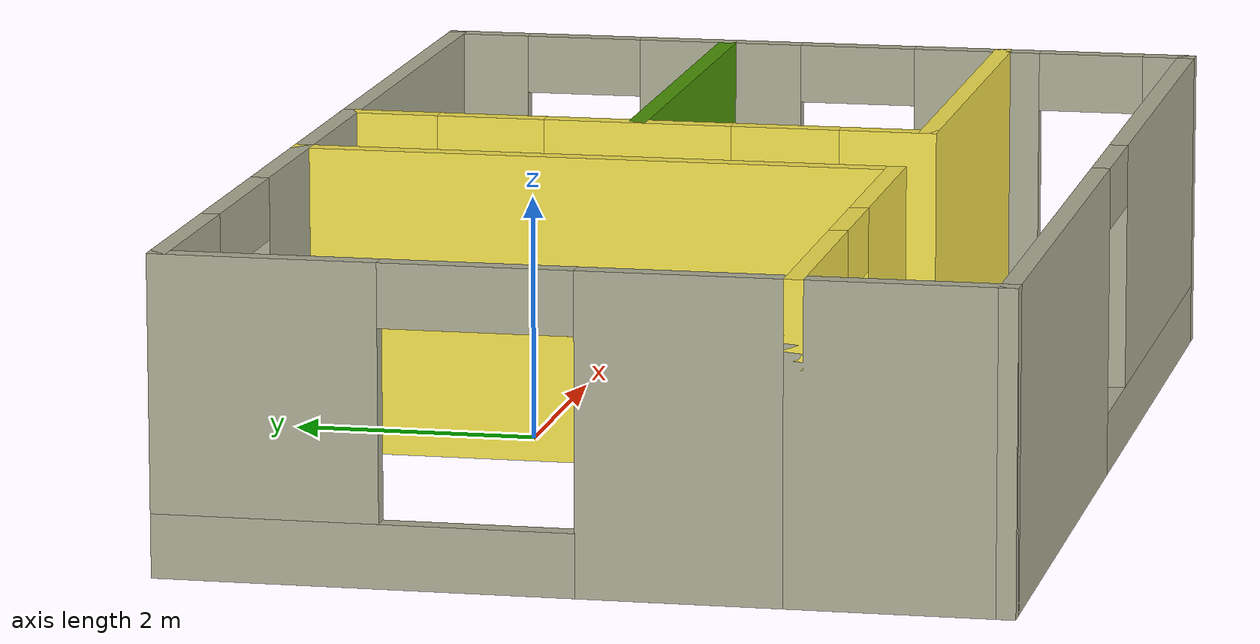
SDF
<?xml version='1.0'?>
<sdf version='1.6'>
  <model name='building'>
    <pose frame=''>-0.165 -1.485 0 0 -0 0</pose>
    <link name='Wall_0'>
      <pose frame=''>0 -3.225 0 0 -0 0</pose>
      <visual name='Wall_0_Visual_0'>
        <pose frame=''>-2.62728 0 1.25 0 -0 0</pose>
        <geometry>
          <box>
            <size>4.74545 0.15 2.5</size>
          </box>
        </geometry>
        <material>
          <script>
            <uri>file://media/materials/scripts/gazebo.material</uri>
            <name>Gazebo/Residential</name>
          </script>
          <ambient>1 1 1 1</ambient>
        </material>
        <meta>
          <layer>0</layer>
        </meta>
      </visual>
      <collision name='Wall_0_Collision_0'>
        <geometry>
          <box>
            <size>4.74545 0.15 2.5</size>
          </box>
        </geometry>
        <pose frame=''>-2.62728 0 1.25 0 -0 0</pose>
      </collision>
      <visual name='Wall_0_Visual_1'>
        <pose frame=''>2.37272 0 0.25 0 -0 0</pose>
        <geometry>
          <box>
            <size>5.25455 0.15 0.5</size>
          </box>
        </geometry>
        <material>
          <script>
            <uri>file://media/materials/scripts/gazebo.material</uri>
            <name>Gazebo/Residential</name>
          </script>
          <ambient>1 1 1 1</ambient>
        </material>
        <meta>
          <layer>0</layer>
        </meta>
      </visual>
      <collision name='Wall_0_Collision_1'>
        <geometry>
          <box>
            <size>5.25455 0.15 0.5</size>
          </box>
        </geometry>
        <pose frame=''>2.37272 0 0.25 0 -0 0</pose>
      </collision>
      <visual name='Wall_0_Visual_2'>
        <pose frame=''>2.87272 0 1.5 0 -0 0</pose>
        <geometry>
          <box>
            <size>4.25455 0.15 2</size>
          </box>
        </geometry>
        <material>
          <script>
            <uri>file://media/materials/scripts/gazebo.material</uri>
            <name>Gazebo/Residential</name>
          </script>
          <ambient>1 1 1 1</ambient>
        </material>
        <meta>
          <layer>0</layer>
        </meta>
      </visual>
      <collision name='Wall_0_Collision_2'>
        <geometry>
          <box>
            <size>4.25455 0.15 2</size>
          </box>
        </geometry>
        <pose frame=''>2.87272 0 1.5 0 -0 0</pose>
      </collision>
      <visual name='Wall_0_Visual_3'>
        <pose frame=''>0.245451 0 2.25 0 -0 0</pose>
        <geometry>
          <box>
            <size>1 0.15 0.5</size>
          </box>
        </geometry>
        <material>
          <script>
            <uri>file://media/materials/scripts/gazebo.material</uri>
            <name>Gazebo/Residential</name>
          </script>
          <ambient>1 1 1 1</ambient>
        </material>
        <meta>
          <layer>0</layer>
        </meta>
      </visual>
      <collision name='Wall_0_Collision_3'>
        <geometry>
          <box>
            <size>1 0.15 0.5</size>
          </box>
        </geometry>
        <pose frame=''>0.245451 0 2.25 0 -0 0</pose>
      </collision>
    </link>
    <link name='Wall_1'>
      <pose frame=''>4.925 -2.425 0 0 -0 1.5708</pose>
      <visual name='Wall_1_Visual_0'>
        <pose frame=''>-0.651737 0 1.25 0 -0 0</pose>
        <geometry>
          <box>
            <size>0.446526 0.15 2.5</size>
          </box>
        </geometry>
        <material>
          <script>
            <uri>file://media/materials/scripts/gazebo.material</uri>
            <name>Gazebo/Residential</name>
          </script>
          <ambient>1 1 1 1</ambient>
        </material>
        <meta>
          <layer>0</layer>
        </meta>
      </visual>
      <collision name='Wall_1_Collision_0'>
        <geometry>
          <box>
            <size>0.446526 0.15 2.5</size>
          </box>
        </geometry>
        <pose frame=''>-0.651737 0 1.25 0 -0 0</pose>
      </collision>
      <visual name='Wall_1_Visual_1'>
        <pose frame=''>0.673263 0 1.25 0 -0 0</pose>
        <geometry>
          <box>
            <size>0.403474 0.15 2.5</size>
          </box>
        </geometry>
        <material>
          <script>
            <uri>file://media/materials/scripts/gazebo.material</uri>
            <name>Gazebo/Residential</name>
          </script>
          <ambient>1 1 1 1</ambient>
        </material>
        <meta>
          <layer>0</layer>
        </meta>
      </visual>
      <collision name='Wall_1_Collision_1'>
        <geometry>
          <box>
            <size>0.403474 0.15 2.5</size>
          </box>
        </geometry>
        <pose frame=''>0.673263 0 1.25 0 -0 0</pose>
      </collision>
      <visual name='Wall_1_Visual_2'>
        <pose frame=''>0.021526 0 2.25 0 -0 0</pose>
        <geometry>
          <box>
            <size>0.9 0.15 0.5</size>
          </box>
        </geometry>
        <material>
          <script>
            <uri>file://media/materials/scripts/gazebo.material</uri>
            <name>Gazebo/Residential</name>
          </script>
          <ambient>1 1 1 1</ambient>
        </material>
        <meta>
          <layer>0</layer>
        </meta>
      </visual>
      <collision name='Wall_1_Collision_2'>
        <geometry>
          <box>
            <size>0.9 0.15 0.5</size>
          </box>
        </geometry>
        <pose frame=''>0.021526 0 2.25 0 -0 0</pose>
      </collision>
    </link>
    <link name='Wall_10'>
      <collision name='Wall_10_Collision'>
        <geometry>
          <box>
            <size>1.75 0.15 2.5</size>
          </box>
        </geometry>
        <pose frame=''>0 0 1.25 0 -0 0</pose>
      </collision>
      <visual name='Wall_10_Visual'>
        <pose frame=''>0 0 1.25 0 -0 0</pose>
        <geometry>
          <box>
            <size>1.75 0.15 2.5</size>
          </box>
        </geometry>
        <material>
          <script>
            <uri>file://media/materials/scripts/gazebo.material</uri>
            <name>Gazebo/Residential</name>
          </script>
          <ambient>1 1 1 1</ambient>
        </material>
        <meta>
          <layer>0</layer>
        </meta>
      </visual>
      <pose frame=''>0.225 3.225 0 0 -0 0</pose>
    </link>
    <link name='Wall_11'>
      <pose frame=''>1.025 0.8 0 0 0 -1.5708</pose>
      <visual name='Wall_11_Visual_0'>
        <pose frame=''>-2.08576 0 1.25 0 -0 0</pose>
        <geometry>
          <box>
            <size>0.828489 0.15 2.5</size>
          </box>
        </geometry>
        <material>
          <script>
            <uri>file://media/materials/scripts/gazebo.material</uri>
            <name>Gazebo/Grey</name>
          </script>
          <ambient>0.988235 0.913725 0.309804 1</ambient>
        </material>
        <meta>
          <layer>0</layer>
        </meta>
      </visual>
      <collision name='Wall_11_Collision_0'>
        <geometry>
          <box>
            <size>0.828489 0.15 2.5</size>
          </box>
        </geometry>
        <pose frame=''>-2.08576 0 1.25 0 -0 0</pose>
      </collision>
      <visual name='Wall_11_Visual_1'>
        <pose frame=''>0.011538 0 1.25 0 -0 0</pose>
        <geometry>
          <box>
            <size>1.5661 0.15 2.5</size>
          </box>
        </geometry>
        <material>
          <script>
            <uri>file://media/materials/scripts/gazebo.material</uri>
            <name>Gazebo/Grey</name>
          </script>
          <ambient>0.988235 0.913725 0.309804 1</ambient>
        </material>
        <meta>
          <layer>0</layer>
        </meta>
      </visual>
      <collision name='Wall_11_Collision_1'>
        <geometry>
          <box>
            <size>1.5661 0.15 2.5</size>
          </box>
        </geometry>
        <pose frame=''>0.011538 0 1.25 0 -0 0</pose>
      </collision>
      <visual name='Wall_11_Visual_2'>
        <pose frame=''>2.09729 0 1.25 0 -0 0</pose>
        <geometry>
          <box>
            <size>0.805412 0.15 2.5</size>
          </box>
        </geometry>
        <material>
          <script>
            <uri>file://media/materials/scripts/gazebo.material</uri>
            <name>Gazebo/Grey</name>
          </script>
          <ambient>0.988235 0.913725 0.309804 1</ambient>
        </material>
        <meta>
          <layer>0</layer>
        </meta>
      </visual>
      <collision name='Wall_11_Collision_2'>
        <geometry>
          <box>
            <size>0.805412 0.15 2.5</size>
          </box>
        </geometry>
        <pose frame=''>2.09729 0 1.25 0 -0 0</pose>
      </collision>
      <visual name='Wall_11_Visual_3'>
        <pose frame=''>-1.22151 0 2.25 0 -0 0</pose>
        <geometry>
          <box>
            <size>0.9 0.15 0.5</size>
          </box>
        </geometry>
        <material>
          <script>
            <uri>file://media/materials/scripts/gazebo.material</uri>
            <name>Gazebo/Grey</name>
          </script>
          <ambient>0.988235 0.913725 0.309804 1</ambient>
        </material>
        <meta>
          <layer>0</layer>
        </meta>
      </visual>
      <collision name='Wall_11_Collision_3'>
        <geometry>
          <box>
            <size>0.9 0.15 0.5</size>
          </box>
        </geometry>
        <pose frame=''>-1.22151 0 2.25 0 -0 0</pose>
      </collision>
      <visual name='Wall_11_Visual_4'>
        <pose frame=''>1.24459 0 2.25 0 -0 0</pose>
        <geometry>
          <box>
            <size>0.9 0.15 0.5</size>
          </box>
        </geometry>
        <material>
          <script>
            <uri>file://media/materials/scripts/gazebo.material</uri>
            <name>Gazebo/Grey</name>
          </script>
          <ambient>0.988235 0.913725 0.309804 1</ambient>
        </material>
        <meta>
          <layer>0</layer>
        </meta>
      </visual>
      <collision name='Wall_11_Collision_4'>
        <geometry>
          <box>
            <size>0.9 0.15 0.5</size>
          </box>
        </geometry>
        <pose frame=''>1.24459 0 2.25 0 -0 0</pose>
      </collision>
    </link>
    <link name='Wall_15'>
      <pose frame=''>4.925 0.8 0 0 -0 1.5708</pose>
      <visual name='Wall_15_Visual_0'>
        <pose frame=''>-2.07857 0 1.25 0 -0 0</pose>
        <geometry>
          <box>
            <size>0.842863 0.15 2.5</size>
          </box>
        </geometry>
        <material>
          <script>
            <uri>file://media/materials/scripts/gazebo.material</uri>
            <name>Gazebo/Residential</name>
          </script>
          <ambient>1 1 1 1</ambient>
        </material>
        <meta>
          <layer>0</layer>
        </meta>
      </visual>
      <collision name='Wall_15_Collision_0'>
        <geometry>
          <box>
            <size>0.842863 0.15 2.5</size>
          </box>
        </geometry>
        <pose frame=''>-2.07857 0 1.25 0 -0 0</pose>
      </collision>
      <visual name='Wall_15_Visual_1'>
        <pose frame=''>0.421431 0 0.25 0 -0 0</pose>
        <geometry>
          <box>
            <size>4.15714 0.15 0.5</size>
          </box>
        </geometry>
        <material>
          <script>
            <uri>file://media/materials/scripts/gazebo.material</uri>
            <name>Gazebo/Residential</name>
          </script>
          <ambient>1 1 1 1</ambient>
        </material>
        <meta>
          <layer>0</layer>
        </meta>
      </visual>
      <collision name='Wall_15_Collision_1'>
        <geometry>
          <box>
            <size>4.15714 0.15 0.5</size>
          </box>
        </geometry>
        <pose frame=''>0.421431 0 0.25 0 -0 0</pose>
      </collision>
      <visual name='Wall_15_Visual_2'>
        <pose frame=''>0.058422 0 1.5 0 -0 0</pose>
        <geometry>
          <box>
            <size>1.43112 0.15 2</size>
          </box>
        </geometry>
        <material>
          <script>
            <uri>file://media/materials/scripts/gazebo.material</uri>
            <name>Gazebo/Residential</name>
          </script>
          <ambient>1 1 1 1</ambient>
        </material>
        <meta>
          <layer>0</layer>
        </meta>
      </visual>
      <collision name='Wall_15_Collision_2'>
        <geometry>
          <box>
            <size>1.43112 0.15 2</size>
          </box>
        </geometry>
        <pose frame=''>0.058422 0 1.5 0 -0 0</pose>
      </collision>
      <visual name='Wall_15_Visual_3'>
        <pose frame=''>2.13699 0 1.5 0 -0 0</pose>
        <geometry>
          <box>
            <size>0.726019 0.15 2</size>
          </box>
        </geometry>
        <material>
          <script>
            <uri>file://media/materials/scripts/gazebo.material</uri>
            <name>Gazebo/Residential</name>
          </script>
          <ambient>1 1 1 1</ambient>
        </material>
        <meta>
          <layer>0</layer>
        </meta>
      </visual>
      <collision name='Wall_15_Collision_3'>
        <geometry>
          <box>
            <size>0.726019 0.15 2</size>
          </box>
        </geometry>
        <pose frame=''>2.13699 0 1.5 0 -0 0</pose>
      </collision>
      <visual name='Wall_15_Visual_4'>
        <pose frame=''>-1.15714 0 2.25 0 -0 0</pose>
        <geometry>
          <box>
            <size>1 0.15 0.5</size>
          </box>
        </geometry>
        <material>
          <script>
            <uri>file://media/materials/scripts/gazebo.material</uri>
            <name>Gazebo/Residential</name>
          </script>
          <ambient>1 1 1 1</ambient>
        </material>
        <meta>
          <layer>0</layer>
        </meta>
      </visual>
      <collision name='Wall_15_Collision_4'>
        <geometry>
          <box>
            <size>1 0.15 0.5</size>
          </box>
        </geometry>
        <pose frame=''>-1.15714 0 2.25 0 -0 0</pose>
      </collision>
      <visual name='Wall_15_Visual_5'>
        <pose frame=''>1.27398 0 2.25 0 -0 0</pose>
        <geometry>
          <box>
            <size>1 0.15 0.5</size>
          </box>
        </geometry>
        <material>
          <script>
            <uri>file://media/materials/scripts/gazebo.material</uri>
            <name>Gazebo/Residential</name>
          </script>
          <ambient>1 1 1 1</ambient>
        </material>
        <meta>
          <layer>0</layer>
        </meta>
      </visual>
      <collision name='Wall_15_Collision_5'>
        <geometry>
          <box>
            <size>1 0.15 0.5</size>
          </box>
        </geometry>
        <pose frame=''>1.27398 0 2.25 0 -0 0</pose>
      </collision>
    </link>
    <link name='Wall_16'>
      <collision name='Wall_16_Collision'>
        <geometry>
          <box>
            <size>4.05 0.15 2.5</size>
          </box>
        </geometry>
        <pose frame=''>0 0 1.25 0 -0 0</pose>
      </collision>
      <visual name='Wall_16_Visual'>
        <pose frame=''>0 0 1.25 0 -0 0</pose>
        <geometry>
          <box>
            <size>4.05 0.15 2.5</size>
          </box>
        </geometry>
        <material>
          <script>
            <uri>file://media/materials/scripts/gazebo.material</uri>
            <name>Gazebo/Residential</name>
          </script>
          <ambient>1 1 1 1</ambient>
        </material>
        <meta>
          <layer>0</layer>
        </meta>
      </visual>
      <pose frame=''>2.975 3.225 0 0 -0 3.14159</pose>
    </link>
    <link name='Wall_23'>
      <collision name='Wall_23_Collision'>
        <geometry>
          <box>
            <size>4 0.15 2.5</size>
          </box>
        </geometry>
        <pose frame=''>0 0 1.25 0 -0 0</pose>
      </collision>
      <visual name='Wall_23_Visual'>
        <pose frame=''>0 0 1.25 0 -0 0</pose>
        <geometry>
          <box>
            <size>4 0.15 2.5</size>
          </box>
        </geometry>
        <material>
          <script>
            <uri>file://media/materials/scripts/gazebo.material</uri>
            <name>Gazebo/Grey</name>
          </script>
          <ambient>0.305882 0.603922 0.0235294 1</ambient>
        </material>
        <meta>
          <layer>0</layer>
        </meta>
      </visual>
      <pose frame=''>2.98078 0.793997 0 0 -0 0</pose>
    </link>
    <link name='Wall_25'>
      <collision name='Wall_25_Collision'>
        <geometry>
          <box>
            <size>4.05 0.15 2.5</size>
          </box>
        </geometry>
        <pose frame=''>0 0 1.25 0 -0 0</pose>
      </collision>
      <visual name='Wall_25_Visual'>
        <pose frame=''>0 0 1.25 0 -0 0</pose>
        <geometry>
          <box>
            <size>4.05 0.15 2.5</size>
          </box>
        </geometry>
        <material>
          <script>
            <uri>file://media/materials/scripts/gazebo.material</uri>
            <name>Gazebo/Grey</name>
          </script>
          <ambient>0.988235 0.913725 0.309804 1</ambient>
        </material>
        <meta>
          <layer>0</layer>
        </meta>
      </visual>
      <pose frame=''>2.975 -1.625 0 0 -0 0</pose>
    </link>
    <link name='Wall_27'>
      <pose frame=''>-2.75 -1.625 0 0 -0 3.14159</pose>
      <visual name='Wall_27_Visual_0'>
        <pose frame=''>-1.38731 0 1.25 0 -0 0</pose>
        <geometry>
          <box>
            <size>1.72539 0.15 2.5</size>
          </box>
        </geometry>
        <material>
          <script>
            <uri>file://media/materials/scripts/gazebo.material</uri>
            <name>Gazebo/Grey</name>
          </script>
          <ambient>0.988235 0.913725 0.309804 1</ambient>
        </material>
        <meta>
          <layer>0</layer>
        </meta>
      </visual>
      <collision name='Wall_27_Collision_0'>
        <geometry>
          <box>
            <size>1.72539 0.15 2.5</size>
          </box>
        </geometry>
        <pose frame=''>-1.38731 0 1.25 0 -0 0</pose>
      </collision>
      <visual name='Wall_27_Visual_1'>
        <pose frame=''>1.31269 0 1.25 0 -0 0</pose>
        <geometry>
          <box>
            <size>1.87461 0.15 2.5</size>
          </box>
        </geometry>
        <material>
          <script>
            <uri>file://media/materials/scripts/gazebo.material</uri>
            <name>Gazebo/Grey</name>
          </script>
          <ambient>0.988235 0.913725 0.309804 1</ambient>
        </material>
        <meta>
          <layer>0</layer>
        </meta>
      </visual>
      <collision name='Wall_27_Collision_1'>
        <geometry>
          <box>
            <size>1.87461 0.15 2.5</size>
          </box>
        </geometry>
        <pose frame=''>1.31269 0 1.25 0 -0 0</pose>
      </collision>
      <visual name='Wall_27_Visual_2'>
        <pose frame=''>-0.07461 0 2.25 0 -0 0</pose>
        <geometry>
          <box>
            <size>0.9 0.15 0.5</size>
          </box>
        </geometry>
        <material>
          <script>
            <uri>file://media/materials/scripts/gazebo.material</uri>
            <name>Gazebo/Grey</name>
          </script>
          <ambient>0.988235 0.913725 0.309804 1</ambient>
        </material>
        <meta>
          <layer>0</layer>
        </meta>
      </visual>
      <collision name='Wall_27_Collision_2'>
        <geometry>
          <box>
            <size>0.9 0.15 0.5</size>
          </box>
        </geometry>
        <pose frame=''>-0.07461 0 2.25 0 -0 0</pose>
      </collision>
    </link>
    <link name='Wall_3'>
      <collision name='Wall_3_Collision'>
        <geometry>
          <box>
            <size>1.75 0.15 2.5</size>
          </box>
        </geometry>
        <pose frame=''>0 0 1.25 0 -0 0</pose>
      </collision>
      <visual name='Wall_3_Visual'>
        <pose frame=''>0 0 1.25 0 -0 0</pose>
        <geometry>
          <box>
            <size>1.75 0.15 2.5</size>
          </box>
        </geometry>
        <material>
          <script>
            <uri>file://media/materials/scripts/gazebo.material</uri>
            <name>Gazebo/Residential</name>
          </script>
          <ambient>1 1 1 1</ambient>
        </material>
        <meta>
          <layer>0</layer>
        </meta>
      </visual>
      <pose frame=''>-4.925 -2.425 0 0 0 -1.5708</pose>
    </link>
    <link name='Wall_6'>
      <pose frame=''>-4.925 0.8 0 0 -0 1.5708</pose>
      <visual name='Wall_6_Visual_0'>
        <pose frame=''>-1.63514 0 1.25 0 -0 0</pose>
        <geometry>
          <box>
            <size>1.72972 0.15 2.5</size>
          </box>
        </geometry>
        <material>
          <script>
            <uri>file://media/materials/scripts/gazebo.material</uri>
            <name>Gazebo/Residential</name>
          </script>
          <ambient>1 1 1 1</ambient>
        </material>
        <meta>
          <layer>0</layer>
        </meta>
      </visual>
      <collision name='Wall_6_Collision_0'>
        <geometry>
          <box>
            <size>1.72972 0.15 2.5</size>
          </box>
        </geometry>
        <pose frame=''>-1.63514 0 1.25 0 -0 0</pose>
      </collision>
      <visual name='Wall_6_Visual_1'>
        <pose frame=''>0.864858 0 0.25 0 -0 0</pose>
        <geometry>
          <box>
            <size>3.27028 0.15 0.5</size>
          </box>
        </geometry>
        <material>
          <script>
            <uri>file://media/materials/scripts/gazebo.material</uri>
            <name>Gazebo/Residential</name>
          </script>
          <ambient>1 1 1 1</ambient>
        </material>
        <meta>
          <layer>0</layer>
        </meta>
      </visual>
      <collision name='Wall_6_Collision_1'>
        <geometry>
          <box>
            <size>3.27028 0.15 0.5</size>
          </box>
        </geometry>
        <pose frame=''>0.864858 0 0.25 0 -0 0</pose>
      </collision>
      <visual name='Wall_6_Visual_2'>
        <pose frame=''>1.61486 0 1.5 0 -0 0</pose>
        <geometry>
          <box>
            <size>1.77028 0.15 2</size>
          </box>
        </geometry>
        <material>
          <script>
            <uri>file://media/materials/scripts/gazebo.material</uri>
            <name>Gazebo/Residential</name>
          </script>
          <ambient>1 1 1 1</ambient>
        </material>
        <meta>
          <layer>0</layer>
        </meta>
      </visual>
      <collision name='Wall_6_Collision_2'>
        <geometry>
          <box>
            <size>1.77028 0.15 2</size>
          </box>
        </geometry>
        <pose frame=''>1.61486 0 1.5 0 -0 0</pose>
      </collision>
      <visual name='Wall_6_Visual_3'>
        <pose frame=''>-0.020283 0 2.25 0 -0 0</pose>
        <geometry>
          <box>
            <size>1.5 0.15 0.5</size>
          </box>
        </geometry>
        <material>
          <script>
            <uri>file://media/materials/scripts/gazebo.material</uri>
            <name>Gazebo/Residential</name>
          </script>
          <ambient>1 1 1 1</ambient>
        </material>
        <meta>
          <layer>0</layer>
        </meta>
      </visual>
      <collision name='Wall_6_Collision_3'>
        <geometry>
          <box>
            <size>1.5 0.15 0.5</size>
          </box>
        </geometry>
        <pose frame=''>-0.020283 0 2.25 0 -0 0</pose>
      </collision>
    </link>
    <link name='Wall_7'>
      <pose frame=''>-2.75 3.225 0 0 -0 0</pose>
      <visual name='Wall_7_Visual_0'>
        <pose frame=''>-1.46228 0 1.25 0 -0 0</pose>
        <geometry>
          <box>
            <size>1.57544 0.15 2.5</size>
          </box>
        </geometry>
        <material>
          <script>
            <uri>file://media/materials/scripts/gazebo.material</uri>
            <name>Gazebo/Residential</name>
          </script>
          <ambient>1 1 1 1</ambient>
        </material>
        <meta>
          <layer>0</layer>
        </meta>
      </visual>
      <collision name='Wall_7_Collision_0'>
        <geometry>
          <box>
            <size>1.57544 0.15 2.5</size>
          </box>
        </geometry>
        <pose frame=''>-1.46228 0 1.25 0 -0 0</pose>
      </collision>
      <visual name='Wall_7_Visual_1'>
        <pose frame=''>0.787722 0 0.25 0 -0 0</pose>
        <geometry>
          <box>
            <size>2.92456 0.15 0.5</size>
          </box>
        </geometry>
        <material>
          <script>
            <uri>file://media/materials/scripts/gazebo.material</uri>
            <name>Gazebo/Residential</name>
          </script>
          <ambient>1 1 1 1</ambient>
        </material>
        <meta>
          <layer>0</layer>
        </meta>
      </visual>
      <collision name='Wall_7_Collision_1'>
        <geometry>
          <box>
            <size>2.92456 0.15 0.5</size>
          </box>
        </geometry>
        <pose frame=''>0.787722 0 0.25 0 -0 0</pose>
      </collision>
      <visual name='Wall_7_Visual_2'>
        <pose frame=''>1.53772 0 1.5 0 -0 0</pose>
        <geometry>
          <box>
            <size>1.42456 0.15 2</size>
          </box>
        </geometry>
        <material>
          <script>
            <uri>file://media/materials/scripts/gazebo.material</uri>
            <name>Gazebo/Residential</name>
          </script>
          <ambient>1 1 1 1</ambient>
        </material>
        <meta>
          <layer>0</layer>
        </meta>
      </visual>
      <collision name='Wall_7_Collision_2'>
        <geometry>
          <box>
            <size>1.42456 0.15 2</size>
          </box>
        </geometry>
        <pose frame=''>1.53772 0 1.5 0 -0 0</pose>
      </collision>
      <visual name='Wall_7_Visual_3'>
        <pose frame=''>0.075443 0 2.25 0 -0 0</pose>
        <geometry>
          <box>
            <size>1.5 0.15 0.5</size>
          </box>
        </geometry>
        <material>
          <script>
            <uri>file://media/materials/scripts/gazebo.material</uri>
            <name>Gazebo/Residential</name>
          </script>
          <ambient>1 1 1 1</ambient>
        </material>
        <meta>
          <layer>0</layer>
        </meta>
      </visual>
      <collision name='Wall_7_Collision_3'>
        <geometry>
          <box>
            <size>1.5 0.15 0.5</size>
          </box>
        </geometry>
        <pose frame=''>0.075443 0 2.25 0 -0 0</pose>
      </collision>
    </link>
    <link name='Wall_8'>
      <collision name='Wall_8_Collision'>
        <geometry>
          <box>
            <size>5 0.15 2.5</size>
          </box>
        </geometry>
        <pose frame=''>0 0 1.25 0 -0 0</pose>
      </collision>
      <visual name='Wall_8_Visual'>
        <pose frame=''>0 0 1.25 0 -0 0</pose>
        <geometry>
          <box>
            <size>5 0.15 2.5</size>
          </box>
        </geometry>
        <material>
          <script>
            <uri>file://media/materials/scripts/gazebo.material</uri>
            <name>Gazebo/Grey</name>
          </script>
          <ambient>0.988235 0.913725 0.309804 1</ambient>
        </material>
        <meta>
          <layer>0</layer>
        </meta>
      </visual>
      <pose frame=''>-0.575 0.8 0 0 0 -1.5708</pose>
    </link>
    <static>1</static>
  </model>
</sdf>
